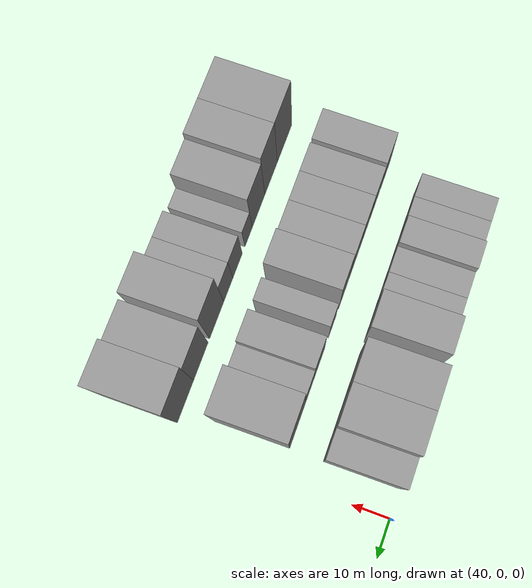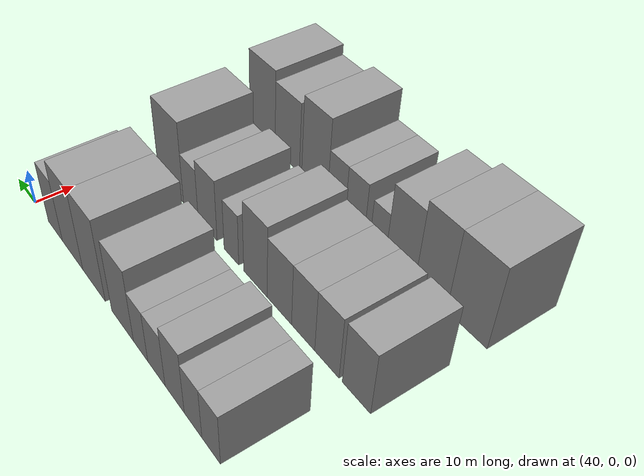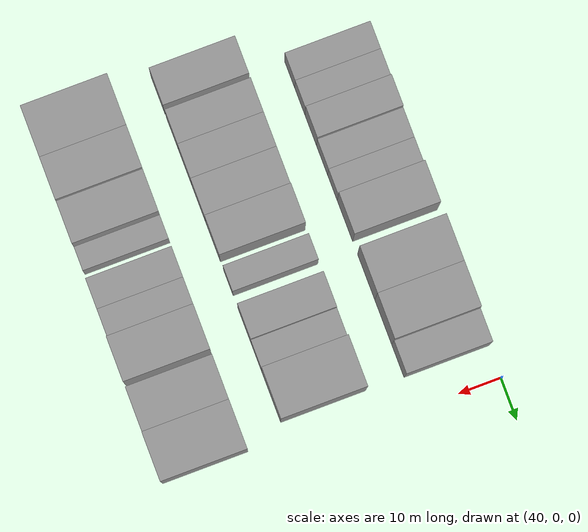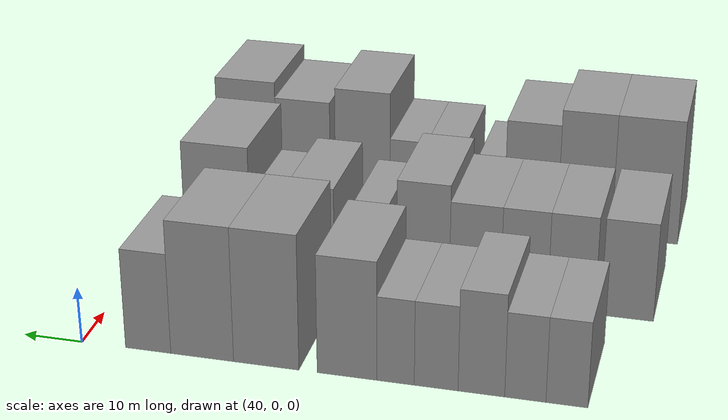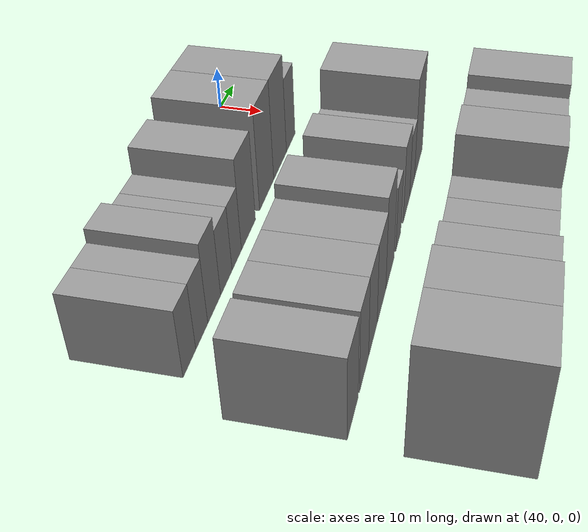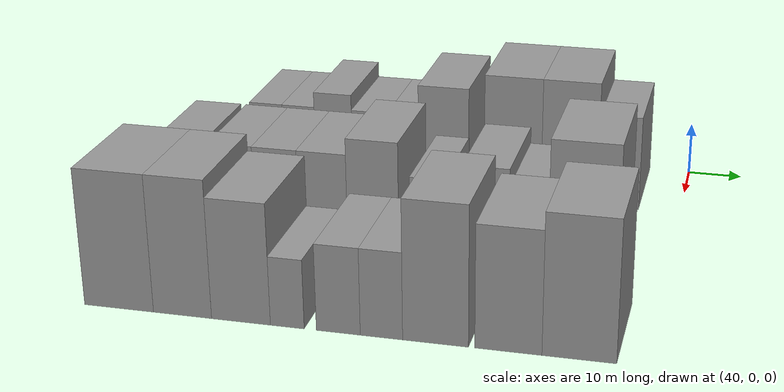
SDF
<sdf version="1.6">
 <world name="default">
  <model name="building_27">
   <static>1</static>
   <pose>50.0000 -79.5064 0 0.000000 0.000000 0.000000</pose>
   <link name="link">
    <pose>0 0 7.50 0 0 0</pose>
    <collision name="collision"><geometry><box><size>20.0000 6.4612 15.0000</size></box></geometry></collision>
    <visual name="visual">
     <cast_shadows>0</cast_shadows>
     <geometry><box><size>20.0000 6.4612 15.0000</size></box></geometry>
     <material>
      <script>
       <uri>model://grey_wall/materials/scripts</uri>
       <uri>model://grey_wall/materials/textures</uri>
       <name>vrc/grey_wall</name>
      </script>
     </material>
    </visual>
   </link>
  </model>
  <model name="building_28">
   <static>1</static>
   <pose>50.0000 -73.0617 0 0.000000 0.000000 0.000000</pose>
   <link name="link">
    <pose>0 0 7.50 0 0 0</pose>
    <collision name="collision"><geometry><box><size>20.0000 6.4282 15.0000</size></box></geometry></collision>
    <visual name="visual">
     <cast_shadows>0</cast_shadows>
     <geometry><box><size>20.0000 6.4282 15.0000</size></box></geometry>
     <material>
      <script>
       <uri>model://grey_wall/materials/scripts</uri>
       <uri>model://grey_wall/materials/textures</uri>
       <name>vrc/grey_wall</name>
      </script>
     </material>
    </visual>
   </link>
  </model>
  <model name="building_29">
   <static>1</static>
   <pose>50.0000 -66.1750 0 0.000000 0.000000 0.000000</pose>
   <link name="link">
    <pose>0 0 9.00 0 0 0</pose>
    <collision name="collision"><geometry><box><size>20.0000 7.3453 18.0000</size></box></geometry></collision>
    <visual name="visual">
     <cast_shadows>0</cast_shadows>
     <geometry><box><size>20.0000 7.3453 18.0000</size></box></geometry>
     <material>
      <script>
       <uri>model://grey_wall/materials/scripts</uri>
       <uri>model://grey_wall/materials/textures</uri>
       <name>vrc/grey_wall</name>
      </script>
     </material>
    </visual>
   </link>
  </model>
  <model name="building_30">
   <static>1</static>
   <pose>50.0000 -59.0148 0 0.000000 0.000000 0.000000</pose>
   <link name="link">
    <pose>0 0 7.50 0 0 0</pose>
    <collision name="collision"><geometry><box><size>20.0000 6.9750 15.0000</size></box></geometry></collision>
    <visual name="visual">
     <cast_shadows>0</cast_shadows>
     <geometry><box><size>20.0000 6.9750 15.0000</size></box></geometry>
     <material>
      <script>
       <uri>model://grey_wall/materials/scripts</uri>
       <uri>model://grey_wall/materials/textures</uri>
       <name>vrc/grey_wall</name>
      </script>
     </material>
    </visual>
   </link>
  </model>
  <model name="building_31">
   <static>1</static>
   <pose>50.0000 -52.5068 0 0.000000 0.000000 0.000000</pose>
   <link name="link">
    <pose>0 0 7.50 0 0 0</pose>
    <collision name="collision"><geometry><box><size>20.0000 6.0411 15.0000</size></box></geometry></collision>
    <visual name="visual">
     <cast_shadows>0</cast_shadows>
     <geometry><box><size>20.0000 6.0411 15.0000</size></box></geometry>
     <material>
      <script>
       <uri>model://grey_wall/materials/scripts</uri>
       <uri>model://grey_wall/materials/textures</uri>
       <name>vrc/grey_wall</name>
      </script>
     </material>
    </visual>
   </link>
  </model>
  <model name="building_32">
   <static>1</static>
   <pose>50.0000 -44.6424 0 0.000000 0.000000 0.000000</pose>
   <link name="link">
    <pose>0 0 10.50 0 0 0</pose>
    <collision name="collision"><geometry><box><size>20.0000 9.6876 21.0000</size></box></geometry></collision>
    <visual name="visual">
     <cast_shadows>0</cast_shadows>
     <geometry><box><size>20.0000 9.6876 21.0000</size></box></geometry>
     <material>
      <script>
       <uri>model://grey_wall/materials/scripts</uri>
       <uri>model://grey_wall/materials/textures</uri>
       <name>vrc/grey_wall</name>
      </script>
     </material>
    </visual>
   </link>
  </model>
  <model name="building_33">
   <static>1</static>
   <pose>50.0000 -31.3701 0 0.000000 0.000000 0.000000</pose>
   <link name="link">
    <pose>0 0 12.00 0 0 0</pose>
    <collision name="collision"><geometry><box><size>20.0000 10.8570 24.0000</size></box></geometry></collision>
    <visual name="visual">
     <cast_shadows>0</cast_shadows>
     <geometry><box><size>20.0000 10.8570 24.0000</size></box></geometry>
     <material>
      <script>
       <uri>model://grey_wall/materials/scripts</uri>
       <uri>model://grey_wall/materials/textures</uri>
       <name>vrc/grey_wall</name>
      </script>
     </material>
    </visual>
   </link>
  </model>
  <model name="building_34">
   <static>1</static>
   <pose>50.0000 -20.6440 0 0.000000 0.000000 0.000000</pose>
   <link name="link">
    <pose>0 0 12.00 0 0 0</pose>
    <collision name="collision"><geometry><box><size>20.0000 10.5951 24.0000</size></box></geometry></collision>
    <visual name="visual">
     <cast_shadows>0</cast_shadows>
     <geometry><box><size>20.0000 10.5951 24.0000</size></box></geometry>
     <material>
      <script>
       <uri>model://grey_wall/materials/scripts</uri>
       <uri>model://grey_wall/materials/textures</uri>
       <name>vrc/grey_wall</name>
      </script>
     </material>
    </visual>
   </link>
  </model>
  <model name="building_35">
   <static>1</static>
   <pose>50.0000 -11.4797 0 0.000000 0.000000 0.000000</pose>
   <link name="link">
    <pose>0 0 9.00 0 0 0</pose>
    <collision name="collision"><geometry><box><size>20.0000 7.7335 18.0000</size></box></geometry></collision>
    <visual name="visual">
     <cast_shadows>0</cast_shadows>
     <geometry><box><size>20.0000 7.7335 18.0000</size></box></geometry>
     <material>
      <script>
       <uri>model://grey_wall/materials/scripts</uri>
       <uri>model://grey_wall/materials/textures</uri>
       <name>vrc/grey_wall</name>
      </script>
     </material>
    </visual>
   </link>
  </model>
  <model name="building_98">
   <static>1</static>
   <pose>79.0000 -85.3346 0 0.000000 0.000000 0.000000</pose>
   <link name="link">
    <pose>0 0 9.00 0 0 0</pose>
    <collision name="collision"><geometry><box><size>20.0000 8.7568 18.0000</size></box></geometry></collision>
    <visual name="visual">
     <cast_shadows>0</cast_shadows>
     <geometry><box><size>20.0000 8.7568 18.0000</size></box></geometry>
     <material>
      <script>
       <uri>model://grey_wall/materials/scripts</uri>
       <uri>model://grey_wall/materials/textures</uri>
       <name>vrc/grey_wall</name>
      </script>
     </material>
    </visual>
   </link>
  </model>
  <model name="building_99">
   <static>1</static>
   <pose>79.0000 -75.9559 0 0.000000 0.000000 0.000000</pose>
   <link name="link">
    <pose>0 0 9.00 0 0 0</pose>
    <collision name="collision"><geometry><box><size>20.0000 8.0005 18.0000</size></box></geometry></collision>
    <visual name="visual">
     <cast_shadows>0</cast_shadows>
     <geometry><box><size>20.0000 8.0005 18.0000</size></box></geometry>
     <material>
      <script>
       <uri>model://grey_wall/materials/scripts</uri>
       <uri>model://grey_wall/materials/textures</uri>
       <name>vrc/grey_wall</name>
      </script>
     </material>
    </visual>
   </link>
  </model>
  <model name="building_100">
   <static>1</static>
   <pose>79.0000 -67.9354 0 0.000000 0.000000 0.000000</pose>
   <link name="link">
    <pose>0 0 9.00 0 0 0</pose>
    <collision name="collision"><geometry><box><size>20.0000 8.0405 18.0000</size></box></geometry></collision>
    <visual name="visual">
     <cast_shadows>0</cast_shadows>
     <geometry><box><size>20.0000 8.0405 18.0000</size></box></geometry>
     <material>
      <script>
       <uri>model://grey_wall/materials/scripts</uri>
       <uri>model://grey_wall/materials/textures</uri>
       <name>vrc/grey_wall</name>
      </script>
     </material>
    </visual>
   </link>
  </model>
  <model name="building_101">
   <static>1</static>
   <pose>79.0000 -59.4832 0 0.000000 0.000000 0.000000</pose>
   <link name="link">
    <pose>0 0 9.00 0 0 0</pose>
    <collision name="collision"><geometry><box><size>20.0000 8.8640 18.0000</size></box></geometry></collision>
    <visual name="visual">
     <cast_shadows>0</cast_shadows>
     <geometry><box><size>20.0000 8.8640 18.0000</size></box></geometry>
     <material>
      <script>
       <uri>model://grey_wall/materials/scripts</uri>
       <uri>model://grey_wall/materials/textures</uri>
       <name>vrc/grey_wall</name>
      </script>
     </material>
    </visual>
   </link>
  </model>
  <model name="building_102">
   <static>1</static>
   <pose>79.0000 -50.4524 0 0.000000 0.000000 0.000000</pose>
   <link name="link">
    <pose>0 0 10.50 0 0 0</pose>
    <collision name="collision"><geometry><box><size>20.0000 9.1976 21.0000</size></box></geometry></collision>
    <visual name="visual">
     <cast_shadows>0</cast_shadows>
     <geometry><box><size>20.0000 9.1976 21.0000</size></box></geometry>
     <material>
      <script>
       <uri>model://grey_wall/materials/scripts</uri>
       <uri>model://grey_wall/materials/textures</uri>
       <name>vrc/grey_wall</name>
      </script>
     </material>
    </visual>
   </link>
  </model>
  <model name="building_103">
   <static>1</static>
   <pose>79.0000 -40.8290 0 0.000000 0.000000 0.000000</pose>
   <link name="link">
    <pose>0 0 7.50 0 0 0</pose>
    <collision name="collision"><geometry><box><size>20.0000 6.0492 15.0000</size></box></geometry></collision>
    <visual name="visual">
     <cast_shadows>0</cast_shadows>
     <geometry><box><size>20.0000 6.0492 15.0000</size></box></geometry>
     <material>
      <script>
       <uri>model://grey_wall/materials/scripts</uri>
       <uri>model://grey_wall/materials/textures</uri>
       <name>vrc/grey_wall</name>
      </script>
     </material>
    </visual>
   </link>
  </model>
  <model name="building_104">
   <static>1</static>
   <pose>79.0000 -30.6722 0 0.000000 0.000000 0.000000</pose>
   <link name="link">
    <pose>0 0 9.00 0 0 0</pose>
    <collision name="collision"><geometry><box><size>20.0000 8.2644 18.0000</size></box></geometry></collision>
    <visual name="visual">
     <cast_shadows>0</cast_shadows>
     <geometry><box><size>20.0000 8.2644 18.0000</size></box></geometry>
     <material>
      <script>
       <uri>model://grey_wall/materials/scripts</uri>
       <uri>model://grey_wall/materials/textures</uri>
       <name>vrc/grey_wall</name>
      </script>
     </material>
    </visual>
   </link>
  </model>
  <model name="building_105">
   <static>1</static>
   <pose>79.0000 -23.1634 0 0.000000 0.000000 0.000000</pose>
   <link name="link">
    <pose>0 0 7.50 0 0 0</pose>
    <collision name="collision"><geometry><box><size>20.0000 6.7531 15.0000</size></box></geometry></collision>
    <visual name="visual">
     <cast_shadows>0</cast_shadows>
     <geometry><box><size>20.0000 6.7531 15.0000</size></box></geometry>
     <material>
      <script>
       <uri>model://grey_wall/materials/scripts</uri>
       <uri>model://grey_wall/materials/textures</uri>
       <name>vrc/grey_wall</name>
      </script>
     </material>
    </visual>
   </link>
  </model>
  <model name="building_106">
   <static>1</static>
   <pose>79.0000 -13.8226 0 0.000000 0.000000 0.000000</pose>
   <link name="link">
    <pose>0 0 12.00 0 0 0</pose>
    <collision name="collision"><geometry><box><size>20.0000 11.9286 24.0000</size></box></geometry></collision>
    <visual name="visual">
     <cast_shadows>0</cast_shadows>
     <geometry><box><size>20.0000 11.9286 24.0000</size></box></geometry>
     <material>
      <script>
       <uri>model://grey_wall/materials/scripts</uri>
       <uri>model://grey_wall/materials/textures</uri>
       <name>vrc/grey_wall</name>
      </script>
     </material>
    </visual>
   </link>
  </model>
  <model name="building_166">
   <static>1</static>
   <pose>108.0000 -85.0687 0 0.000000 0.000000 0.000000</pose>
   <link name="link">
    <pose>0 0 12.00 0 0 0</pose>
    <collision name="collision"><geometry><box><size>20.0000 11.9275 24.0000</size></box></geometry></collision>
    <visual name="visual">
     <cast_shadows>0</cast_shadows>
     <geometry><box><size>20.0000 11.9275 24.0000</size></box></geometry>
     <material>
      <script>
       <uri>model://grey_wall/materials/scripts</uri>
       <uri>model://grey_wall/materials/textures</uri>
       <name>vrc/grey_wall</name>
      </script>
     </material>
    </visual>
   </link>
  </model>
  <model name="building_167">
   <static>1</static>
   <pose>108.0000 -74.1536 0 0.000000 0.000000 0.000000</pose>
   <link name="link">
    <pose>0 0 12.00 0 0 0</pose>
    <collision name="collision"><geometry><box><size>20.0000 9.9028 24.0000</size></box></geometry></collision>
    <visual name="visual">
     <cast_shadows>0</cast_shadows>
     <geometry><box><size>20.0000 9.9028 24.0000</size></box></geometry>
     <material>
      <script>
       <uri>model://grey_wall/materials/scripts</uri>
       <uri>model://grey_wall/materials/textures</uri>
       <name>vrc/grey_wall</name>
      </script>
     </material>
    </visual>
   </link>
  </model>
  <model name="building_168">
   <static>1</static>
   <pose>108.0000 -64.2706 0 0.000000 0.000000 0.000000</pose>
   <link name="link">
    <pose>0 0 10.50 0 0 0</pose>
    <collision name="collision"><geometry><box><size>20.0000 9.8631 21.0000</size></box></geometry></collision>
    <visual name="visual">
     <cast_shadows>0</cast_shadows>
     <geometry><box><size>20.0000 9.8631 21.0000</size></box></geometry>
     <material>
      <script>
       <uri>model://grey_wall/materials/scripts</uri>
       <uri>model://grey_wall/materials/textures</uri>
       <name>vrc/grey_wall</name>
      </script>
     </material>
    </visual>
   </link>
  </model>
  <model name="building_169">
   <static>1</static>
   <pose>108.0000 -56.5410 0 0.000000 0.000000 0.000000</pose>
   <link name="link">
    <pose>0 0 6.00 0 0 0</pose>
    <collision name="collision"><geometry><box><size>20.0000 5.5962 12.0000</size></box></geometry></collision>
    <visual name="visual">
     <cast_shadows>0</cast_shadows>
     <geometry><box><size>20.0000 5.5962 12.0000</size></box></geometry>
     <material>
      <script>
       <uri>model://grey_wall/materials/scripts</uri>
       <uri>model://grey_wall/materials/textures</uri>
       <name>vrc/grey_wall</name>
      </script>
     </material>
    </visual>
   </link>
  </model>
  <model name="building_170">
   <static>1</static>
   <pose>108.0000 -48.1608 0 0.000000 0.000000 0.000000</pose>
   <link name="link">
    <pose>0 0 7.50 0 0 0</pose>
    <collision name="collision"><geometry><box><size>20.0000 7.1640 15.0000</size></box></geometry></collision>
    <visual name="visual">
     <cast_shadows>0</cast_shadows>
     <geometry><box><size>20.0000 7.1640 15.0000</size></box></geometry>
     <material>
      <script>
       <uri>model://grey_wall/materials/scripts</uri>
       <uri>model://grey_wall/materials/textures</uri>
       <name>vrc/grey_wall</name>
      </script>
     </material>
    </visual>
   </link>
  </model>
  <model name="building_171">
   <static>1</static>
   <pose>108.0000 -41.1626 0 0.000000 0.000000 0.000000</pose>
   <link name="link">
    <pose>0 0 7.50 0 0 0</pose>
    <collision name="collision"><geometry><box><size>20.0000 6.8325 15.0000</size></box></geometry></collision>
    <visual name="visual">
     <cast_shadows>0</cast_shadows>
     <geometry><box><size>20.0000 6.8325 15.0000</size></box></geometry>
     <material>
      <script>
       <uri>model://grey_wall/materials/scripts</uri>
       <uri>model://grey_wall/materials/textures</uri>
       <name>vrc/grey_wall</name>
      </script>
     </material>
    </visual>
   </link>
  </model>
  <model name="building_172">
   <static>1</static>
   <pose>108.0000 -32.5141 0 0.000000 0.000000 0.000000</pose>
   <link name="link">
    <pose>0 0 12.00 0 0 0</pose>
    <collision name="collision"><geometry><box><size>20.0000 10.4645 24.0000</size></box></geometry></collision>
    <visual name="visual">
     <cast_shadows>0</cast_shadows>
     <geometry><box><size>20.0000 10.4645 24.0000</size></box></geometry>
     <material>
      <script>
       <uri>model://grey_wall/materials/scripts</uri>
       <uri>model://grey_wall/materials/textures</uri>
       <name>vrc/grey_wall</name>
      </script>
     </material>
    </visual>
   </link>
  </model>
  <model name="building_173">
   <static>1</static>
   <pose>108.0000 -21.0524 0 0.000000 0.000000 0.000000</pose>
   <link name="link">
    <pose>0 0 10.50 0 0 0</pose>
    <collision name="collision"><geometry><box><size>20.0000 10.4588 21.0000</size></box></geometry></collision>
    <visual name="visual">
     <cast_shadows>0</cast_shadows>
     <geometry><box><size>20.0000 10.4588 21.0000</size></box></geometry>
     <material>
      <script>
       <uri>model://grey_wall/materials/scripts</uri>
       <uri>model://grey_wall/materials/textures</uri>
       <name>vrc/grey_wall</name>
      </script>
     </material>
    </visual>
   </link>
  </model>
  <model name="building_174">
   <static>1</static>
   <pose>108.0000 -10.0961 0 0.000000 0.000000 0.000000</pose>
   <link name="link">
    <pose>0 0 12.00 0 0 0</pose>
    <collision name="collision"><geometry><box><size>20.0000 11.4538 24.0000</size></box></geometry></collision>
    <visual name="visual">
     <cast_shadows>0</cast_shadows>
     <geometry><box><size>20.0000 11.4538 24.0000</size></box></geometry>
     <material>
      <script>
       <uri>model://grey_wall/materials/scripts</uri>
       <uri>model://grey_wall/materials/textures</uri>
       <name>vrc/grey_wall</name>
      </script>
     </material>
    </visual>
   </link>
  </model>
 </world>
</sdf>
